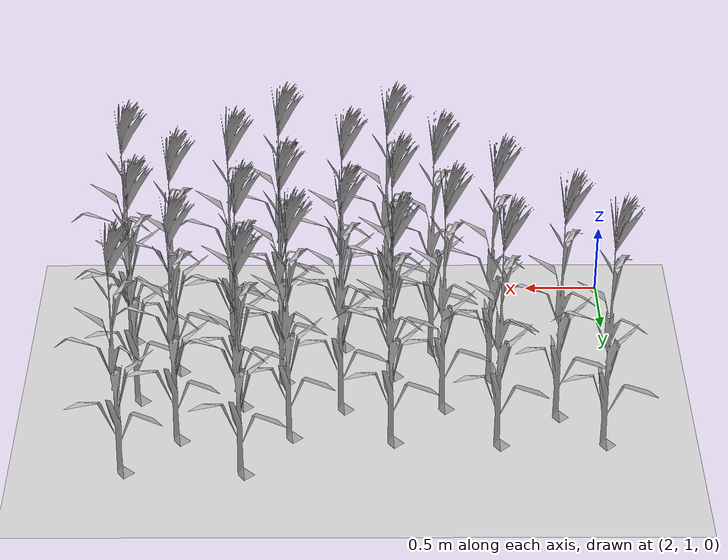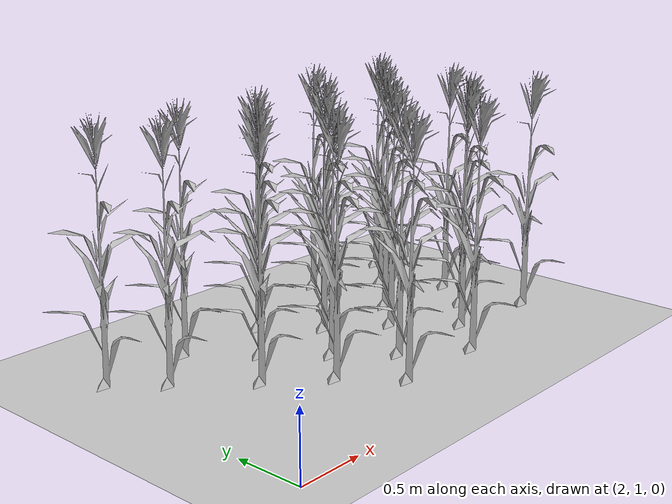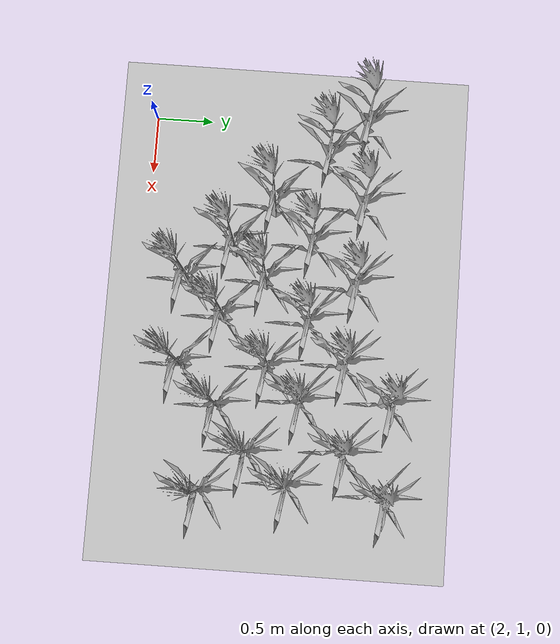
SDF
<sdf version="1.7">
 <world name="farmland_world">
  <model name="ground_plane">
   <static>1</static>
   <link name="link">
    <collision name="collision">
     <geometry><plane><normal>0 0 1</normal><size>40.0 40.0</size></plane></geometry>
     <surface><friction><ode><mu>100</mu><mu2>50</mu2></ode></friction></surface>
    </collision>
    <visual name="visual">
     <cast_shadows>0</cast_shadows>
     <geometry><plane><normal>0 0 1</normal><size>40.0 40.0</size></plane></geometry>
     <material>
      <script><uri>file://media/materials/scripts/gazebo.material</uri><name>Gazebo/Grey</name></script>
     </material>
    </visual>
   </link>
  </model>
  <model name="tree_3_4">
   <static>1</static>
   <link name="link">
    <collision name="collision">
     <geometry><mesh><uri>model://Corn_low_poly/corn.obj</uri><scale>1 1 1</scale></mesh></geometry>
     <surface><friction><ode><mu>100</mu><mu2>50</mu2></ode></friction></surface>
    </collision>
    <visual name="visual">
     <geometry><mesh><uri>model://Corn_low_poly/corn.obj</uri><scale>1 1 1</scale></mesh></geometry>
    </visual>
   </link>
   <pose>3.518027952950115 1.448531610302552 0 0 0 0</pose>
  </model>
  <model name="tree_3_5">
   <static>1</static>
   <link name="link">
    <collision name="collision">
     <geometry><mesh><uri>model://Corn_low_poly/corn.obj</uri><scale>1 1 1</scale></mesh></geometry>
     <surface><friction><ode><mu>100</mu><mu2>50</mu2></ode></friction></surface>
    </collision>
    <visual name="visual">
     <geometry><mesh><uri>model://Corn_low_poly/corn.obj</uri><scale>1 1 1</scale></mesh></geometry>
    </visual>
   </link>
   <pose>3.215919138264696 1.8258071645380627 0 0 0 0</pose>
  </model>
  <model name="tree_3_6">
   <static>1</static>
   <link name="link">
    <collision name="collision">
     <geometry><mesh><uri>model://Corn_low_poly/corn.obj</uri><scale>1 1 1</scale></mesh></geometry>
     <surface><friction><ode><mu>100</mu><mu2>50</mu2></ode></friction></surface>
    </collision>
    <visual name="visual">
     <geometry><mesh><uri>model://Corn_low_poly/corn.obj</uri><scale>1 1 1</scale></mesh></geometry>
    </visual>
   </link>
   <pose>2.831848687563857 2.148193749473167 0 0 0 0</pose>
  </model>
  <model name="tree_3_7">
   <static>1</static>
   <link name="link">
    <collision name="collision">
     <geometry><mesh><uri>model://Corn_low_poly/corn.obj</uri><scale>1 1 1</scale></mesh></geometry>
     <surface><friction><ode><mu>100</mu><mu2>50</mu2></ode></friction></surface>
    </collision>
    <visual name="visual">
     <geometry><mesh><uri>model://Corn_low_poly/corn.obj</uri><scale>1 1 1</scale></mesh></geometry>
    </visual>
   </link>
   <pose>2.408447944001716 2.5840157247397992 0 0 0 0</pose>
  </model>
  <model name="tree_3_8">
   <static>1</static>
   <link name="link">
    <collision name="collision">
     <geometry><mesh><uri>model://Corn_low_poly/corn.obj</uri><scale>1 1 1</scale></mesh></geometry>
     <surface><friction><ode><mu>100</mu><mu2>50</mu2></ode></friction></surface>
    </collision>
    <visual name="visual">
     <geometry><mesh><uri>model://Corn_low_poly/corn.obj</uri><scale>1 1 1</scale></mesh></geometry>
    </visual>
   </link>
   <pose>2.1207289162977068 2.890487309548852 0 0 0 0</pose>
  </model>
  <model name="tree_3_45">
   <static>1</static>
   <link name="link">
    <collision name="collision">
     <geometry><mesh><uri>model://Corn_low_poly/corn.obj</uri><scale>1 1 1</scale></mesh></geometry>
     <surface><friction><ode><mu>100</mu><mu2>50</mu2></ode></friction></surface>
    </collision>
    <visual name="visual">
     <geometry><mesh><uri>model://Corn_low_poly/corn.obj</uri><scale>1 1 1</scale></mesh></geometry>
    </visual>
   </link>
   <pose>4.248096875457242 1.448065347118155 0 0 0 0</pose>
  </model>
  <model name="tree_3_46">
   <static>1</static>
   <link name="link">
    <collision name="collision">
     <geometry><mesh><uri>model://Corn_low_poly/corn.obj</uri><scale>1 1 1</scale></mesh></geometry>
     <surface><friction><ode><mu>100</mu><mu2>50</mu2></ode></friction></surface>
    </collision>
    <visual name="visual">
     <geometry><mesh><uri>model://Corn_low_poly/corn.obj</uri><scale>1 1 1</scale></mesh></geometry>
    </visual>
   </link>
   <pose>3.821593672414259 1.7759120098527523 0 0 0 0</pose>
  </model>
  <model name="tree_3_47">
   <static>1</static>
   <link name="link">
    <collision name="collision">
     <geometry><mesh><uri>model://Corn_low_poly/corn.obj</uri><scale>1 1 1</scale></mesh></geometry>
     <surface><friction><ode><mu>100</mu><mu2>50</mu2></ode></friction></surface>
    </collision>
    <visual name="visual">
     <geometry><mesh><uri>model://Corn_low_poly/corn.obj</uri><scale>1 1 1</scale></mesh></geometry>
    </visual>
   </link>
   <pose>3.4924745138911604 2.1157946073264178 0 0 0 0</pose>
  </model>
  <model name="tree_3_48">
   <static>1</static>
   <link name="link">
    <collision name="collision">
     <geometry><mesh><uri>model://Corn_low_poly/corn.obj</uri><scale>1 1 1</scale></mesh></geometry>
     <surface><friction><ode><mu>100</mu><mu2>50</mu2></ode></friction></surface>
    </collision>
    <visual name="visual">
     <geometry><mesh><uri>model://Corn_low_poly/corn.obj</uri><scale>1 1 1</scale></mesh></geometry>
    </visual>
   </link>
   <pose>3.1606279285832306 2.490993275646689 0 0 0 0</pose>
  </model>
  <model name="tree_3_49">
   <static>1</static>
   <link name="link">
    <collision name="collision">
     <geometry><mesh><uri>model://Corn_low_poly/corn.obj</uri><scale>1 1 1</scale></mesh></geometry>
     <surface><friction><ode><mu>100</mu><mu2>50</mu2></ode></friction></surface>
    </collision>
    <visual name="visual">
     <geometry><mesh><uri>model://Corn_low_poly/corn.obj</uri><scale>1 1 1</scale></mesh></geometry>
    </visual>
   </link>
   <pose>2.8142990893067044 2.8945642962744946 0 0 0 0</pose>
  </model>
  <model name="tree_3_87">
   <static>1</static>
   <link name="link">
    <collision name="collision">
     <geometry><mesh><uri>model://Corn_low_poly/corn.obj</uri><scale>1 1 1</scale></mesh></geometry>
     <surface><friction><ode><mu>100</mu><mu2>50</mu2></ode></friction></surface>
    </collision>
    <visual name="visual">
     <geometry><mesh><uri>model://Corn_low_poly/corn.obj</uri><scale>1 1 1</scale></mesh></geometry>
    </visual>
   </link>
   <pose>4.572928296338004 1.7810129302614859 0 0 0 0</pose>
  </model>
  <model name="tree_3_88">
   <static>1</static>
   <link name="link">
    <collision name="collision">
     <geometry><mesh><uri>model://Corn_low_poly/corn.obj</uri><scale>1 1 1</scale></mesh></geometry>
     <surface><friction><ode><mu>100</mu><mu2>50</mu2></ode></friction></surface>
    </collision>
    <visual name="visual">
     <geometry><mesh><uri>model://Corn_low_poly/corn.obj</uri><scale>1 1 1</scale></mesh></geometry>
    </visual>
   </link>
   <pose>4.227272457389692 2.181687439679359 0 0 0 0</pose>
  </model>
  <model name="tree_3_89">
   <static>1</static>
   <link name="link">
    <collision name="collision">
     <geometry><mesh><uri>model://Corn_low_poly/corn.obj</uri><scale>1 1 1</scale></mesh></geometry>
     <surface><friction><ode><mu>100</mu><mu2>50</mu2></ode></friction></surface>
    </collision>
    <visual name="visual">
     <geometry><mesh><uri>model://Corn_low_poly/corn.obj</uri><scale>1 1 1</scale></mesh></geometry>
    </visual>
   </link>
   <pose>3.8297221032685558 2.4954873102956805 0 0 0 0</pose>
  </model>
  <model name="tree_3_90">
   <static>1</static>
   <link name="link">
    <collision name="collision">
     <geometry><mesh><uri>model://Corn_low_poly/corn.obj</uri><scale>1 1 1</scale></mesh></geometry>
     <surface><friction><ode><mu>100</mu><mu2>50</mu2></ode></friction></surface>
    </collision>
    <visual name="visual">
     <geometry><mesh><uri>model://Corn_low_poly/corn.obj</uri><scale>1 1 1</scale></mesh></geometry>
    </visual>
   </link>
   <pose>3.5050233200844074 2.862167666118046 0 0 0 0</pose>
  </model>
  <model name="tree_3_128">
   <static>1</static>
   <link name="link">
    <collision name="collision">
     <geometry><mesh><uri>model://Corn_low_poly/corn.obj</uri><scale>1 1 1</scale></mesh></geometry>
     <surface><friction><ode><mu>100</mu><mu2>50</mu2></ode></friction></surface>
    </collision>
    <visual name="visual">
     <geometry><mesh><uri>model://Corn_low_poly/corn.obj</uri><scale>1 1 1</scale></mesh></geometry>
    </visual>
   </link>
   <pose>5.278987972661195 1.6948297291709746 0 0 0 0</pose>
  </model>
  <model name="tree_3_129">
   <static>1</static>
   <link name="link">
    <collision name="collision">
     <geometry><mesh><uri>model://Corn_low_poly/corn.obj</uri><scale>1 1 1</scale></mesh></geometry>
     <surface><friction><ode><mu>100</mu><mu2>50</mu2></ode></friction></surface>
    </collision>
    <visual name="visual">
     <geometry><mesh><uri>model://Corn_low_poly/corn.obj</uri><scale>1 1 1</scale></mesh></geometry>
    </visual>
   </link>
   <pose>4.942672414734178 2.0555187078099695 0 0 0 0</pose>
  </model>
  <model name="tree_3_130">
   <static>1</static>
   <link name="link">
    <collision name="collision">
     <geometry><mesh><uri>model://Corn_low_poly/corn.obj</uri><scale>1 1 1</scale></mesh></geometry>
     <surface><friction><ode><mu>100</mu><mu2>50</mu2></ode></friction></surface>
    </collision>
    <visual name="visual">
     <geometry><mesh><uri>model://Corn_low_poly/corn.obj</uri><scale>1 1 1</scale></mesh></geometry>
    </visual>
   </link>
   <pose>4.501438872589189 2.4622158794863735 0 0 0 0</pose>
  </model>
  <model name="tree_3_131">
   <static>1</static>
   <link name="link">
    <collision name="collision">
     <geometry><mesh><uri>model://Corn_low_poly/corn.obj</uri><scale>1 1 1</scale></mesh></geometry>
     <surface><friction><ode><mu>100</mu><mu2>50</mu2></ode></friction></surface>
    </collision>
    <visual name="visual">
     <geometry><mesh><uri>model://Corn_low_poly/corn.obj</uri><scale>1 1 1</scale></mesh></geometry>
    </visual>
   </link>
   <pose>4.167754784772649 2.8068944071233624 0 0 0 0</pose>
  </model>
  <model name="tree_3_171">
   <static>1</static>
   <link name="link">
    <collision name="collision">
     <geometry><mesh><uri>model://Corn_low_poly/corn.obj</uri><scale>1 1 1</scale></mesh></geometry>
     <surface><friction><ode><mu>100</mu><mu2>50</mu2></ode></friction></surface>
    </collision>
    <visual name="visual">
     <geometry><mesh><uri>model://Corn_low_poly/corn.obj</uri><scale>1 1 1</scale></mesh></geometry>
    </visual>
   </link>
   <pose>5.187671514920926 2.394921917806638 0 0 0 0</pose>
  </model>
  <model name="tree_3_172">
   <static>1</static>
   <link name="link">
    <collision name="collision">
     <geometry><mesh><uri>model://Corn_low_poly/corn.obj</uri><scale>1 1 1</scale></mesh></geometry>
     <surface><friction><ode><mu>100</mu><mu2>50</mu2></ode></friction></surface>
    </collision>
    <visual name="visual">
     <geometry><mesh><uri>model://Corn_low_poly/corn.obj</uri><scale>1 1 1</scale></mesh></geometry>
    </visual>
   </link>
   <pose>4.901963423503378 2.835899966161878 0 0 0 0</pose>
  </model>
  <model name="tree_3_173">
   <static>1</static>
   <link name="link">
    <collision name="collision">
     <geometry><mesh><uri>model://Corn_low_poly/corn.obj</uri><scale>1 1 1</scale></mesh></geometry>
     <surface><friction><ode><mu>100</mu><mu2>50</mu2></ode></friction></surface>
    </collision>
    <visual name="visual">
     <geometry><mesh><uri>model://Corn_low_poly/corn.obj</uri><scale>1 1 1</scale></mesh></geometry>
    </visual>
   </link>
   <pose>4.470813368567955 3.196904460474109 0 0 0 0</pose>
  </model>
  <model name="tree_3_214">
   <static>1</static>
   <link name="link">
    <collision name="collision">
     <geometry><mesh><uri>model://Corn_low_poly/corn.obj</uri><scale>1 1 1</scale></mesh></geometry>
     <surface><friction><ode><mu>100</mu><mu2>50</mu2></ode></friction></surface>
    </collision>
    <visual name="visual">
     <geometry><mesh><uri>model://Corn_low_poly/corn.obj</uri><scale>1 1 1</scale></mesh></geometry>
    </visual>
   </link>
   <pose>5.244303125828249 3.1771976029106788 0 0 0 0</pose>
  </model>
 </world>
</sdf>
